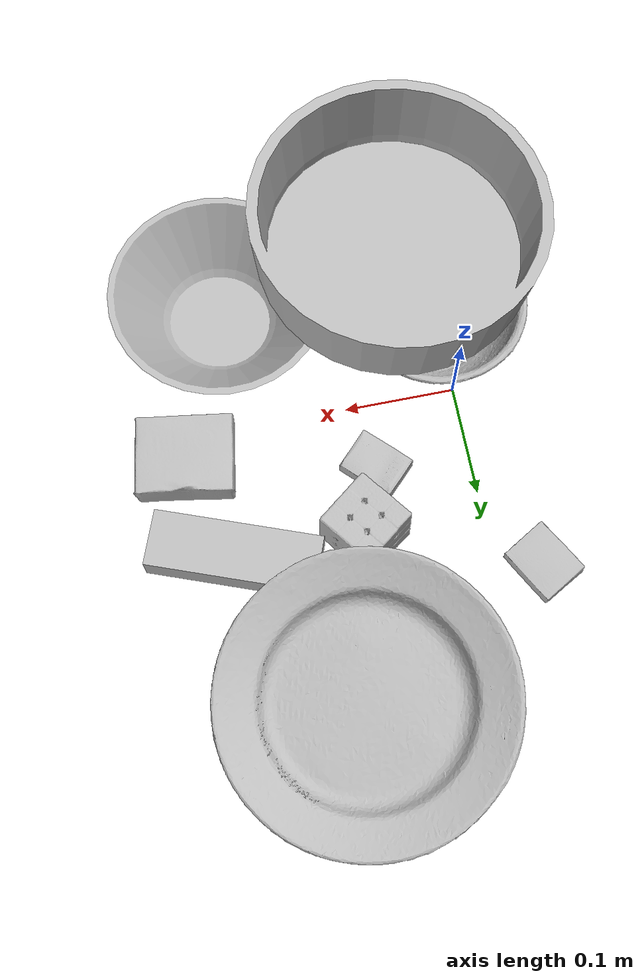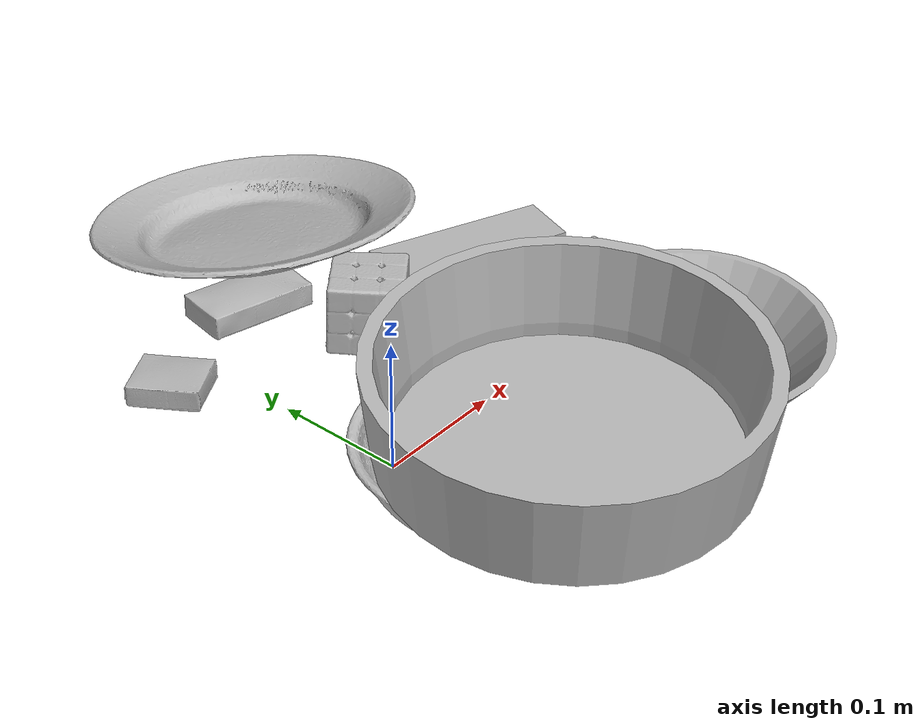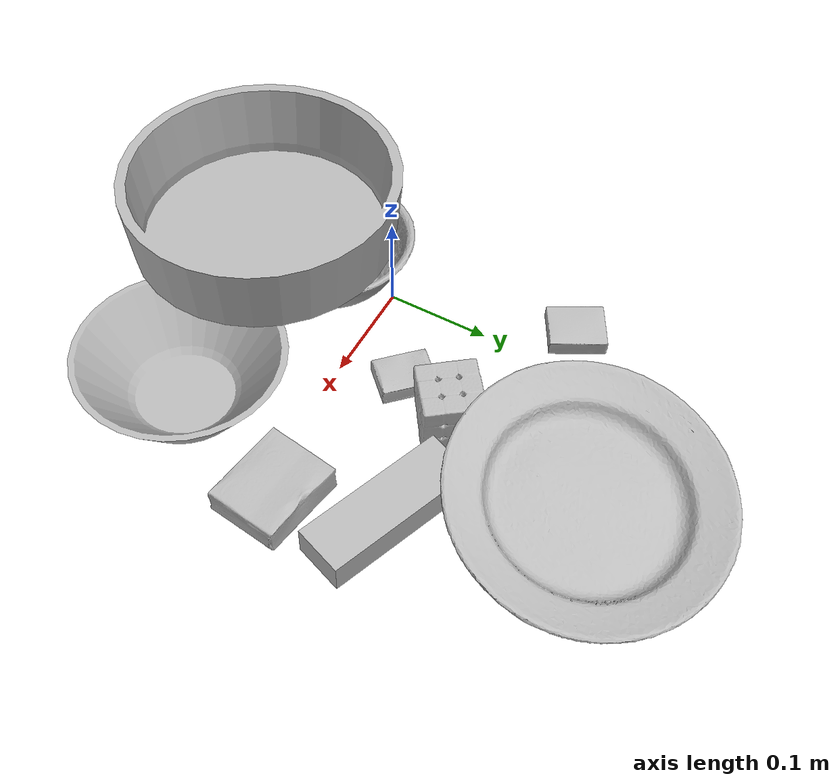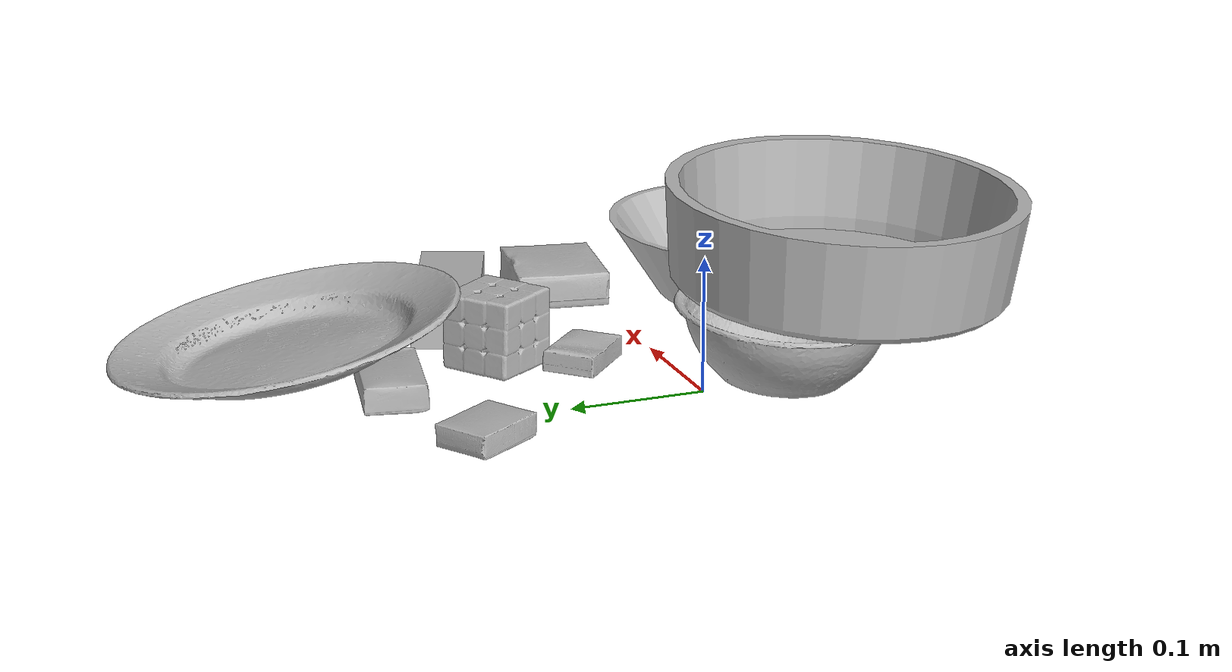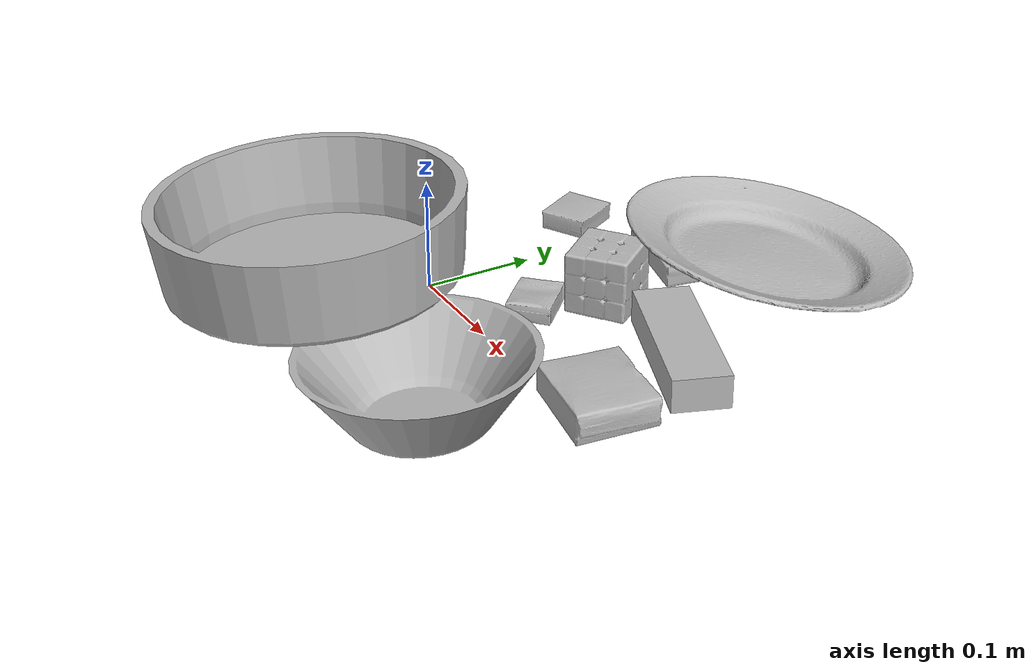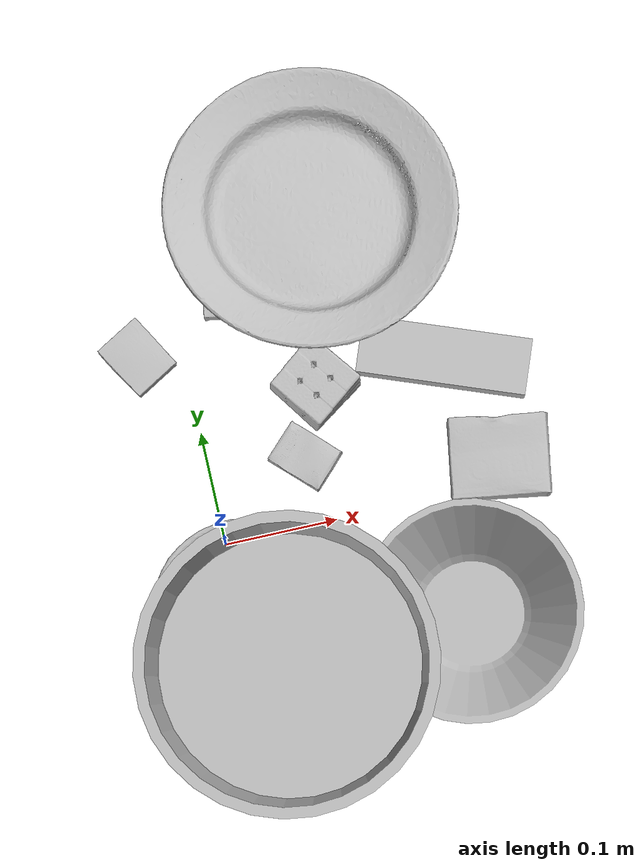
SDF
<sdf version="1.4">
  <world name="default">
    <light name="light1" type="point">
      <pose>0 0 1 0 0 0</pose>
      <diffuse>3 3 3 1</diffuse>
      <specular>3 3 3 1</specular>
    </light>
    <light name="light2" type="point">
      <pose>0 0.5 2 0 0 0</pose>
      <diffuse>1 1 1 1</diffuse>
      <specular>1 1 1 1</specular>
    </light>
    <light name="light3" type="point">
      <pose>0 0.5 2 0 0 0</pose>
      <diffuse>3 3 3 1</diffuse>
      <specular>3 3 3 1</specular>
    </light>
    <scene>
      <ambient>0.7 0.7 0.7</ambient>
    </scene>
    <model name="box1">
      <link name="link_box1">
        <collision name="default">
          <geometry>
            <mesh>
              <uri>model://jenga/collision_meshes/collision.obj</uri>
              <scale>1.0 1.0 1.0</scale>
            </mesh>
          </geometry>
          <surface>
            <friction>
              <ode>
                <mu>0.5</mu>
                <mu2>0.5</mu2>
              </ode>
            </friction>
          <contact>
        <ode>
            <max_vel>0</max_vel>
            <min_depth>0.0001</min_depth>
            <kp>1e8</kp>
        </ode>
    </contact></surface>
        </collision>
        <visual name="default">
          <geometry>
            <mesh>
              <uri>model://jenga/visual_meshes/visual.dae</uri>
              <scale>1.0 1.0 1.0</scale>
            </mesh>
          </geometry>
        </visual>
        <inertial>
          <mass>0.2830650806427002</mass>
          <pose>-2.502855807051674e-07 -0.00010250010382151231 -4.0923401684267446e-05 0.0 -7.34215461761844e-07 0.0</pose>
          <inertia>
            <ixx>7.833097e-05</ixx>
            <iyy>0.0005307686</iyy>
            <izz>0.0005666406</izz>
            <ixy>0</ixy>
            <ixz>0</ixz>
            <iyz>0</iyz>
          </inertia>
        </inertial>
      </link>
      <pose>0.22228026390075684 0.11803542822599411 0.014999998733401299 -2.3568555971413956e-09 -3.6517884872244434e-09 -0.36069016446788615</pose>
    </model>
    <model name="box11">
      <link name="link_box11">
        <collision name="default">
          <geometry>
            <mesh>
              <uri>model://cracker_box/collision_meshes/collision.obj</uri>
              <scale>0.25 0.25 0.25</scale>
            </mesh>
          </geometry>
          <surface>
            <friction>
              <ode>
                <mu>0.5</mu>
                <mu2>0.5</mu2>
              </ode>
            </friction>
          <contact>
        <ode>
            <max_vel>0</max_vel>
            <min_depth>0.0001</min_depth>
            <kp>1e8</kp>
        </ode>
    </contact></surface>
        </collision>
        <visual name="default">
          <geometry>
            <mesh>
              <uri>model://cracker_box/visual_meshes/visual.dae</uri>
              <scale>0.25 0.25 0.25</scale>
            </mesh>
          </geometry>
        </visual>
        <inertial>
          <mass>0.04137800261378288</mass>
          <pose>0.00023660347505938262 6.358561950037256e-05 -0.0004257383698131889 -0.00031620748486547713 -0.011106488669102847 0.002546795699546287</pose>
          <inertia>
            <ixx>6.577948e-06</ixx>
            <iyy>1.0861484e-05</iyy>
            <izz>1.5500336e-05</izz>
            <ixy>0</ixy>
            <ixz>0</ixz>
            <iyz>0</iyz>
          </inertia>
        </inertial>
      </link>
      <pose>0.0844297856092453 0.05963897332549095 0.009120450355112553 -0.011787934342479947 -0.007367157107319401 -0.7807299177075714</pose>
    </model>
    <model name="box2">
      <link name="link_box2">
        <collision name="default">
          <geometry>
            <mesh>
              <uri>model://gelatin_box/collision_meshes/collision.obj</uri>
              <scale>1.0 1.0 1.0</scale>
            </mesh>
          </geometry>
          <surface>
            <friction>
              <ode>
                <mu>0.5</mu>
                <mu2>0.5</mu2>
              </ode>
            </friction>
          <contact>
        <ode>
            <max_vel>0</max_vel>
            <min_depth>0.0001</min_depth>
            <kp>1e8</kp>
        </ode>
    </contact></surface>
        </collision>
        <visual name="default">
          <geometry>
            <mesh>
              <uri>model://gelatin_box/visual_meshes/visual.dae</uri>
              <scale>1.0 1.0 1.0</scale>
            </mesh>
          </geometry>
        </visual>
        <inertial>
          <mass>0.22900472581386566</mass>
          <pose>0.000431961816502735 0.00011156871914863586 -0.0003640321083366871 -0.001050372089182411 -0.004755818223717792 0.016440559471606643</pose>
          <inertia>
            <ixx>0.00016165864</ixx>
            <iyy>0.00011547193</iyy>
            <izz>0.00024608054</izz>
            <ixy>0</ixy>
            <ixz>0</ixz>
            <iyz>0</iyz>
          </inertia>
        </inertial>
      </link>
      <pose>0.25043588876724243 0.021273622289299965 0.01516831386834383 0.005596305942178192 -0.007303521898255511 1.4054008200961419</pose>
    </model>
    <model name="box21">
      <link name="link_box21">
        <collision name="default">
          <geometry>
            <mesh>
              <uri>model://sugar_box/collision_meshes/collision.obj</uri>
              <scale>0.5 0.5 0.5</scale>
            </mesh>
          </geometry>
          <surface>
            <friction>
              <ode>
                <mu>0.5</mu>
                <mu2>0.5</mu2>
              </ode>
            </friction>
          <contact>
        <ode>
            <max_vel>0</max_vel>
            <min_depth>0.0001</min_depth>
            <kp>1e8</kp>
        </ode>
    </contact></surface>
        </collision>
        <visual name="default">
          <geometry>
            <mesh>
              <uri>model://sugar_box/visual_meshes/visual.dae</uri>
              <scale>0.5 0.5 0.5</scale>
            </mesh>
          </geometry>
        </visual>
        <inertial>
          <mass>0.12271630764007568</mass>
          <pose>0.0005171863595023751 1.924554817378521e-05 -0.00018182404164690524 -0.00040462595111886014 0.0010506636380741379 0.0026153785562511135</pose>
          <inertia>
            <ixx>2.5561721e-05</ixx>
            <iyy>8.262075e-05</iyy>
            <izz>9.890688e-05</izz>
            <ixy>0</ixy>
            <ixz>0</ixz>
            <iyz>0</iyz>
          </inertia>
        </inertial>
      </link>
      <pose>0.07107442617416382 0.21056795120239258 0.011399309150874615 0.000775403130080541 -0.023432618529607402 2.943896671852937</pose>
    </model>
    <model name="box3">
      <link name="link_box3">
        <collision name="default">
          <geometry>
            <mesh>
              <uri>model://rubiks_cube/collision_meshes/collision.obj</uri>
              <scale>1.0 1.0 1.0</scale>
            </mesh>
          </geometry>
          <surface>
            <friction>
              <ode>
                <mu>0.5</mu>
                <mu2>0.5</mu2>
              </ode>
            </friction>
          <contact>
        <ode>
            <max_vel>0</max_vel>
            <min_depth>0.0001</min_depth>
            <kp>1e8</kp>
        </ode>
    </contact></surface>
        </collision>
        <visual name="default">
          <geometry>
            <mesh>
              <uri>model://rubiks_cube/visual_meshes/visual.dae</uri>
              <scale>1.0 1.0 1.0</scale>
            </mesh>
          </geometry>
        </visual>
        <inertial>
          <mass>0.16665811836719513</mass>
          <pose>2.6721039830590598e-05 5.256966323941015e-05 -7.264316082000732e-06 -0.05467166844566422 -0.0981397083583286 -0.034457090447706985</pose>
          <inertia>
            <ixx>9.20898e-05</ixx>
            <iyy>9.166034e-05</iyy>
            <izz>9.285292e-05</izz>
            <ixy>0</ixy>
            <ixz>0</ixz>
            <iyz>0</iyz>
          </inertia>
        </inertial>
      </link>
      <pose>0.10694645345211029 0.1184782162308693 0.028679324313998222 -3.3992775532114706e-05 4.4370443428162336e-05 0.6417022155307065</pose>
    </model>
    <model name="box31">
      <link name="link_box31">
        <collision name="default">
          <geometry>
            <mesh>
              <uri>model://pudding_box/collision_meshes/collision.obj</uri>
              <scale>0.5 0.5 0.5</scale>
            </mesh>
          </geometry>
          <surface>
            <friction>
              <ode>
                <mu>0.5</mu>
                <mu2>0.5</mu2>
              </ode>
            </friction>
          <contact>
        <ode>
            <max_vel>0</max_vel>
            <min_depth>0.0001</min_depth>
            <kp>1e8</kp>
        </ode>
    </contact></surface>
        </collision>
        <visual name="default">
          <geometry>
            <mesh>
              <uri>model://pudding_box/visual_meshes/visual.dae</uri>
              <scale>0.5 0.5 0.5</scale>
            </mesh>
          </geometry>
        </visual>
        <inertial>
          <mass>0.023591291159391403</mass>
          <pose>0.00024474109522998333 0.00040339428232982755 -0.0002594413817860186 0.00521310040348307 -0.006603797312523218 0.020079827030686108</pose>
          <inertia>
            <ixx>6.667184e-06</ixx>
            <iyy>4.4857293e-06</iyy>
            <izz>9.845841e-06</izz>
            <ixy>0</ixy>
            <ixz>0</ixz>
            <iyz>0</iyz>
          </inertia>
        </inertial>
      </link>
      <pose>-0.040524087846279144 0.17652791738510132 0.009862903505563736 0.022348558442686246 -0.011391591666194169 -2.619922775071755</pose>
    </model>
    <model name="plate1">
      <link name="link_plate1">
        <collision name="default">
          <geometry>
            <mesh>
              <uri>model://plate/collision_meshes/collision.obj</uri>
              <scale>1.0 1.0 1.0</scale>
            </mesh>
          </geometry>
          <surface>
            <friction>
              <ode>
                <mu>0.5</mu>
                <mu2>0.5</mu2>
              </ode>
            </friction>
          <contact>
        <ode>
            <max_vel>0</max_vel>
            <min_depth>0.0001</min_depth>
            <kp>1e8</kp>
        </ode>
    </contact></surface>
        </collision>
        <visual name="default">
          <geometry>
            <mesh>
              <uri>model://plate/visual_meshes/visual.dae</uri>
              <scale>1.0 1.0 1.0</scale>
            </mesh>
          </geometry>
        </visual>
        <inertial>
          <mass>0.2114637792110443</mass>
          <pose>-0.0006044656038284302 0.0002782588708214462 -0.0010561993112787604 0.002218744002621918 -0.003225513006599694 0.45262307488796183</pose>
          <inertia>
            <ixx>0.0009892316</ixx>
            <iyy>0.0009797702</iyy>
            <izz>0.0019347895</izz>
            <ixy>0</ixy>
            <ixz>0</ixz>
            <iyz>0</iyz>
          </inertia>
        </inertial>
      </link>
      <pose>0.13570524752140045 0.26872920989990234 0.02758488431572914 -0.09072194529277311 -0.16158028408851507 -1.429191046660169</pose>
    </model>
    <model name="bowl1">
      <link name="link_bowl1">
        <collision name="default">
          <geometry>
            <mesh>
              <uri>model://bowl_a/collision_meshes/collision.obj</uri>
              <scale>1.0 1.0 1.0</scale>
            </mesh>
          </geometry>
          <surface>
            <friction>
              <ode>
                <mu>0.5</mu>
                <mu2>0.5</mu2>
              </ode>
            </friction>
          <contact>
        <ode>
            <max_vel>0</max_vel>
            <min_depth>0.0001</min_depth>
            <kp>1e8</kp>
        </ode>
    </contact></surface>
        </collision>
        <visual name="default">
          <geometry>
            <mesh>
              <uri>model://bowl_a/visual_meshes/visual.dae</uri>
              <scale>1.0 1.0 1.0</scale>
            </mesh>
          </geometry>
        </visual>
        <inertial>
          <mass>0.48499906063079834</mass>
          <pose>0.00027867438620887697 4.731262743007392e-05 -0.0013765298062935472 -0.0009805334386135593 -0.0010938262367740986 -0.19123808511586568</pose>
          <inertia>
            <ixx>0.0013808149</ixx>
            <iyy>0.0013892918</iyy>
            <izz>0.0024558324</izz>
            <ixy>0</ixy>
            <ixz>0</ixz>
            <iyz>0</iyz>
          </inertia>
        </inertial>
      </link>
      <pose>0.19602824747562408 -0.10794449597597122 0.03270610421895981 0.0022281371265107826 -0.04206462136862714 0.470989780335012</pose>
    </model>
    <model name="plate2">
      <link name="link_plate2">
        <collision name="default">
          <geometry>
            <mesh>
              <uri>model://pan_tefal/collision_meshes/collision.obj</uri>
              <scale>1.0 1.0 1.0</scale>
            </mesh>
          </geometry>
          <surface>
            <friction>
              <ode>
                <mu>0.5</mu>
                <mu2>0.5</mu2>
              </ode>
            </friction>
          <contact>
        <ode>
            <max_vel>0</max_vel>
            <min_depth>0.0001</min_depth>
            <kp>1e8</kp>
        </ode>
    </contact></surface>
        </collision>
        <visual name="default">
          <geometry>
            <mesh>
              <uri>model://pan_tefal/visual_meshes/visual.dae</uri>
              <scale>1.0 1.0 1.0</scale>
            </mesh>
          </geometry>
        </visual>
        <inertial>
          <mass>1.510846495628357</mass>
          <pose>-0.00018002149590756744 3.279069278505631e-05 -0.008514934219419956 0.0008190286460061649 -0.00033014112223844094 -0.3318560039733936</pose>
          <inertia>
            <ixx>0.010429303</ixx>
            <iyy>0.010496541</iyy>
            <izz>0.01919834</izz>
            <ixy>0</ixy>
            <ixz>0</ixz>
            <iyz>0</iyz>
          </inertia>
        </inertial>
      </link>
      <pose>0.029751835390925407 -0.12209368497133255 0.09432271122932434 0.05809499402290288 0.003955229856057082 -0.9773053522105959</pose>
    </model>
    <model name="bowl2">
      <link name="link_bowl2">
        <collision name="default">
          <geometry>
            <mesh>
              <uri>model://bowl/collision_meshes/collision.obj</uri>
              <scale>1.0 1.0 1.0</scale>
            </mesh>
          </geometry>
          <surface>
            <friction>
              <ode>
                <mu>0.5</mu>
                <mu2>0.5</mu2>
              </ode>
            </friction>
          <contact>
        <ode>
            <max_vel>0</max_vel>
            <min_depth>0.0001</min_depth>
            <kp>1e8</kp>
        </ode>
    </contact></surface>
        </collision>
        <visual name="default">
          <geometry>
            <mesh>
              <uri>model://bowl/visual_meshes/visual.dae</uri>
              <scale>1.0 1.0 1.0</scale>
            </mesh>
          </geometry>
        </visual>
        <inertial>
          <mass>0.12714597582817078</mass>
          <pose>0.0002044505235971883 -0.0010302012087777257 -0.0008042659610509872 -0.015764101160635133 0.01454679544325816 0.7140405339594252</pose>
          <inertia>
            <ixx>0.0002920644</ixx>
            <iyy>0.00028553858</iyy>
            <izz>0.0004913528</izz>
            <ixy>0</ixy>
            <ixz>0</ixz>
            <iyz>0</iyz>
          </inertia>
        </inertial>
      </link>
      <pose>0.003973542246967554 -0.06440769881010056 0.03013877011835575 -0.0359726463764028 0.04036075556385678 -3.1218418672631034</pose>
    </model>
  <physics type="ode">
      <max_contacts>50</max_contacts>
      <ode>
        <solver>
          <type>quick</type>
          <iters>75</iters>
        </solver>
        <constraints>
          <contact_max_correcting_vel>0</contact_max_correcting_vel>
          <contact_surface_layer>0</contact_surface_layer>
        </constraints>
      </ode>
    </physics></world>
</sdf>
